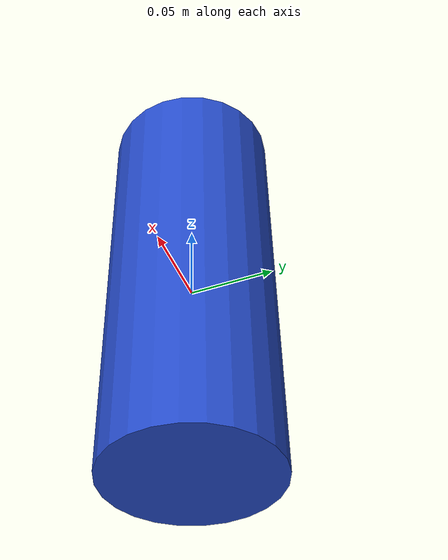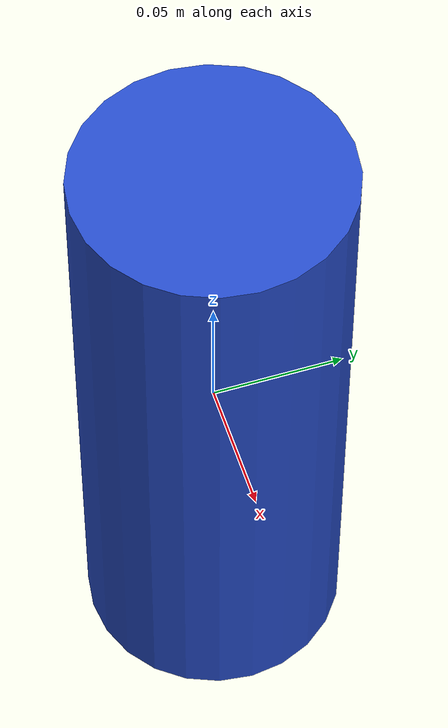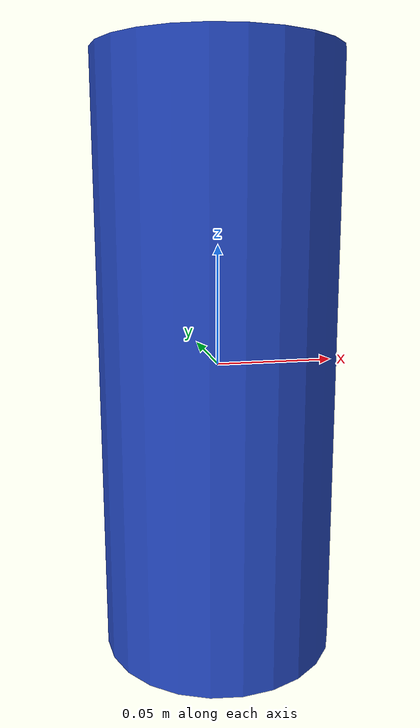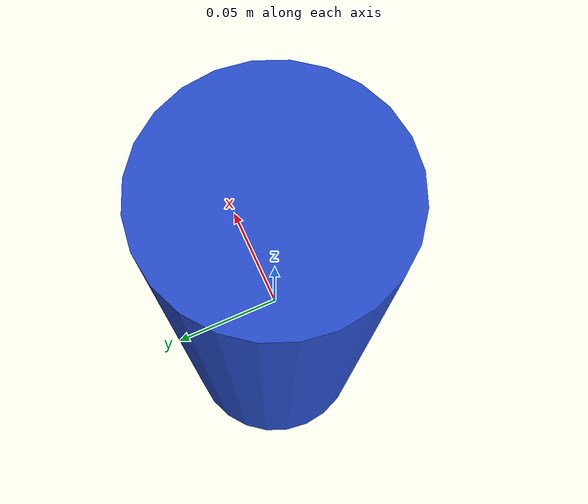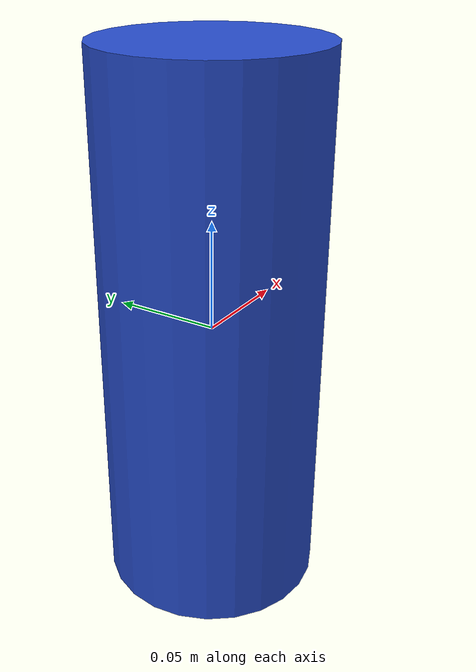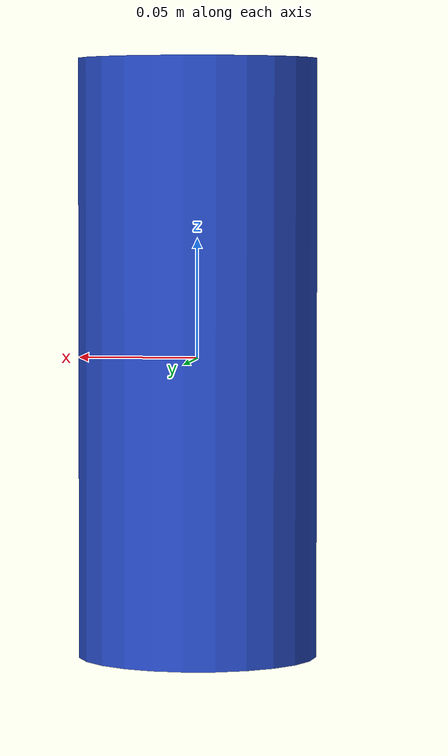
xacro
<robot name="target_box">
  <link name="target_link_1">
    <inertial>
      <origin xyz="0 0 0" />
      <mass value="0.05" />
      <inertia  ixx="0.006" ixy="0"  ixz="0"  iyy="0.006"  iyz="0"  izz="0.002"/>
    </inertial>
    <visual>
      <origin xyz="0 0 0"/>
      <geometry>
        <cylinder radius="0.05" length="0.25"/>
        <!--box size="0.10 0.10 0.25"/-->
      </geometry>
    </visual>
    <collision>
      <origin xyz="0 0 0"/>
      <geometry>
        <cylinder radius="0.05" length="0.25"/>
        <!--box size="0.10 0.10 0.25"/-->
      </geometry>
    </collision>
  </link>
  <gazebo reference="target_link_1">
    <material>Gazebo/Blue</material>
    <mu1>1.0</mu1>
    <mu2>1.0</mu2>
  </gazebo>
</robot>
